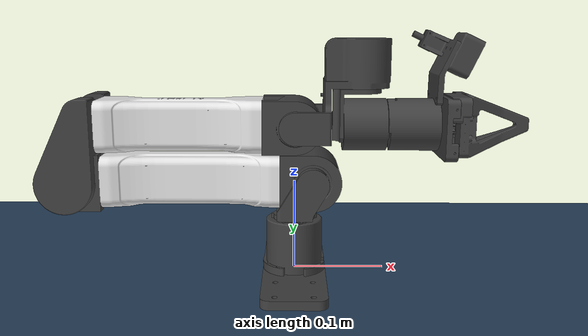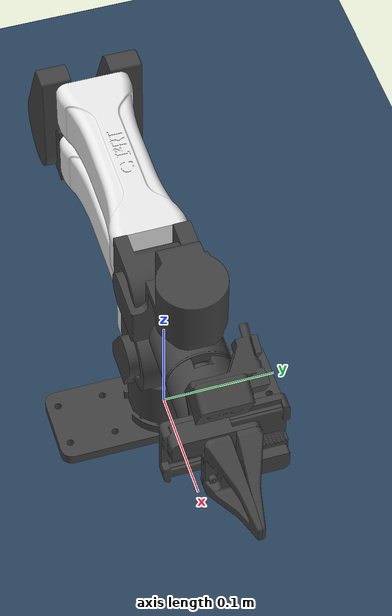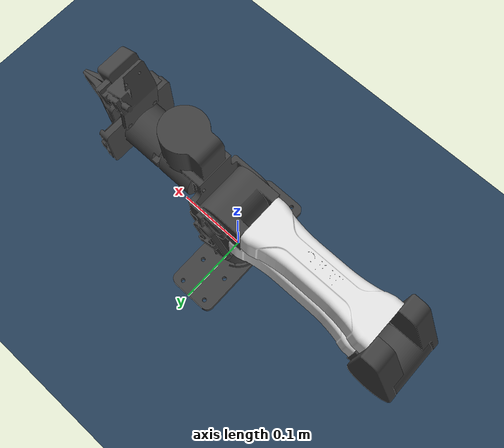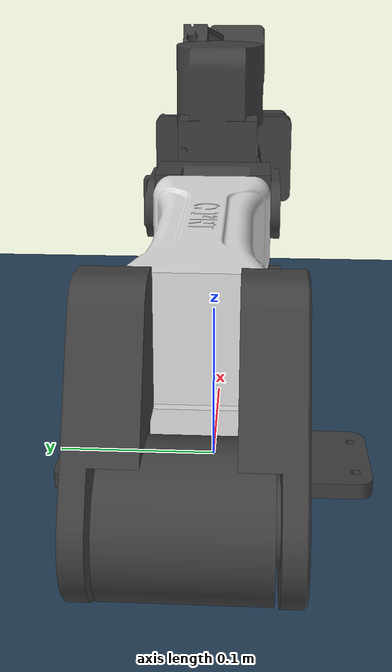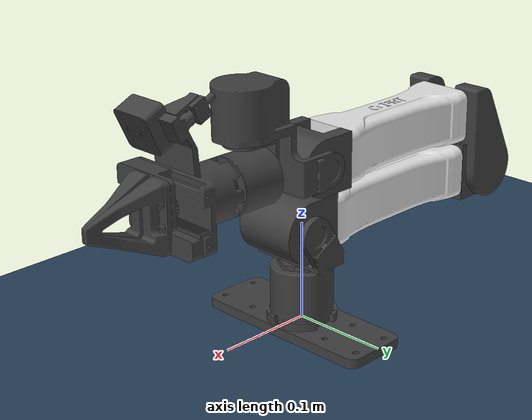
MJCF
<mujoco model="yam_linear_4310 scene">
  <include file="yam_linear_4310.xml"/>

  <visual>
    <headlight diffuse="0.6 0.6 0.6" ambient="0.3 0.3 0.3" specular="0 0 0"/>
    <rgba haze="0.15 0.25 0.35 1"/>
    <global azimuth="120" elevation="-20"/>
    <scale contactwidth="0.03" contactheight="0.01" forcewidth="0.01"/>
  </visual>

  <asset>
    <texture type="skybox" builtin="gradient" rgb1="0.3 0.5 0.7" rgb2="0 0 0" width="512" height="3072"/>
    <texture type="2d" name="groundplane" builtin="checker" mark="edge" rgb1="0.2 0.3 0.4" rgb2="0.1 0.2 0.3"
      markrgb="0.8 0.8 0.8" width="300" height="300"/>
    <material name="groundplane" texture="groundplane" texuniform="true" texrepeat="5 5" reflectance="0.2"/>
  </asset>

  <worldbody>
    <light pos="0 0 1.5" dir="0 0 -1" directional="true"/>
    <geom name="floor" pos="0 0 -0.01" size="0 0 0.05" type="plane" material="groundplane" contype="1"/>
  </worldbody>
</mujoco>

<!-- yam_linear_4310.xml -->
<mujoco model="yam_linear_4310">
  <compiler angle="radian" meshdir="assets"/>

  <option integrator="implicitfast"/>

  <visual>
    <scale contactwidth="0.03" contactheight="0.01" forcewidth="0.01"/>
  </visual>

  <default>
    <default class="yam">
      <position inheritrange="1"/>
      <joint frictionloss="0.1" axis="0 0 1"/>
      <default class="dm4340">
        <joint armature="0.032"/>
        <position kp="80" kv="5" forcerange="-28 28"/>
      </default>
      <default class="dm4310">
        <joint armature="0.0018"/>
        <position kp="10" kv="1.5" forcerange="-10 10"/>
      </default>
      <default class="visual">
        <geom type="mesh" contype="0" conaffinity="0" density="0" group="2" material="black"/>
      </default>
      <default class="collision">
        <geom group="3" type="capsule"/>
        <default class="finger_body_collision">
          <geom type="box" rgba="0.381493 0.492734 0.780446 1"/>
        </default>
        <default class="finger_collision">
          <geom type="box" condim="6" friction="1 5e-3 5e-4" solref=".01 1" priority="1"
            rgba="0.381493 0.492734 0.780446 1"/>
        </default>
      </default>
      <default class="finger">
        <!-- Rail travel: 0 is closed, 0.0475 m is open. The range extends 5 mm
          past closed to allow squeezing grasped objects (up to 50 N per pad). -->
        <joint type="slide" axis="0 0 -1" range="-0.005 0.0475" armature="0.1" frictionloss="0.1"/>
        <position ctrlrange="-0.005 0.0475" kp="2000" kv="150" forcerange="-100 100" inheritrange="0"/>
      </default>
    </default>
  </default>

  <asset>
    <material name="black" rgba="0.25 0.25 0.25 1"/>
    <material name="white" rgba="0.9 0.9 0.9 1"/>

    <mesh file="model2.stl"/>
    <mesh file="model2__2.stl"/>
    <mesh file="model2__3.stl"/>
    <mesh file="model2__4.stl"/>
    <mesh file="model2__5.stl"/>
    <mesh file="model2__6.stl"/>
    <mesh file="model2__7.stl"/>
    <mesh file="model2__8.stl"/>
    <mesh file="model2__9.stl"/>
    <mesh file="model2__10.stl"/>
    <mesh file="model2__11.stl"/>
    <mesh file="linear_4310/gripper.stl"/>
    <mesh file="linear_4310/tip_left.stl"/>
    <mesh file="linear_4310/tip_right.stl"/>
    <mesh file="linear_4310/d405_wrist_linear_4310.stl"/>
  </asset>

  <worldbody>
    <light name="spotlight" mode="targetbodycom" target="link_6" pos="0 0 1"/>
    <body name="arm" childclass="yam">
      <geom class="visual" pos="0 0 -0.0006" quat="1 0 0 1" mesh="model2"/>
      <geom class="collision" size="0.033 0.01" pos="0.0 0.0 0.026" quat="1 0 0 0"/>
      <body name="link_1" pos="0 0 0.0631" quat="1 0 0 1">
        <inertial pos="-0.00192861 -0.00795735 0.0208176" quat="0.297851 0.642634 0.360045 0.607185" mass="0.12415"
          diaginertia="0.000180751 0.000145532 5.89179e-05"/>
        <joint name="joint1" range="-2.61799 3.14159" class="dm4340"/>
        <geom class="visual" pos="5.26159e-07 2.34355e-07 -0.0632" quat="1 0 0 0" mesh="model2__2"/>
        <body name="link_2" pos="2.5e-05 -0.02 0.0409" quat="1 1 1 1" gravcomp="1">
          <inertial pos="0.132008 2.10599e-06 0.000293073" quat="1 1 1 1" mass="1.24434"
            diaginertia="0.0121902 0.0121318 0.000683304"/>
          <joint name="joint2" range="0 3.66519" class="dm4340"/>
          <geom class="visual" pos="0.0199992 -0.1041 -2.44738e-05" quat="1 -1 -1 -1" mesh="model2__3"/>
          <geom class="visual" pos="0.0199992 -0.1041 -2.44738e-05" quat="1 -1 -1 -1" mesh="model2__4"/>
          <geom class="visual" pos="0.0199992 -0.1041 -2.44738e-05" quat="1 -1 -1 -1" mesh="model2__5"
            material="white"/>
          <geom class="collision" size="0.032 0.11" pos="0.13 0 0" quat="1 0 1 0"/>
          <geom class="collision" size="0.033 0.02" pos="0 0.0 0" quat="1 0 0 0"/>
          <geom class="collision" size="0.033 0.025" pos="0.265 0 0" quat="1 0 0 0"/>
          <body name="link_3" pos="0.264 0 0" quat="0 1 0 0" gravcomp="1">
            <inertial pos="-0.121816 -0.054846 -0.000111108" quat="1 1 1 1" mass="0.853698"
              diaginertia="0.00699732 0.00696112 0.000788244"/>
            <joint name="joint3" range="0 3.14159" class="dm4340"/>
            <geom class="visual" pos="-0.244001 0.104101 2.44738e-05" quat="1 1 1 -1" mesh="model2__6"/>
            <geom class="visual" pos="-0.244001 0.104101 2.44738e-05" quat="1 1 1 -1" mesh="model2__7"/>
            <geom class="visual" pos="-0.244001 0.104101 2.44738e-05" quat="1 1 1 -1" mesh="model2__8"
              material="white"/>
            <geom class="visual" pos="-0.244001 0.104101 2.44738e-05" quat="1 1 1 -1" mesh="model2__9"/>
            <geom class="collision" size="0.034 0.12" pos="-0.14 -0.06 0.0" quat="1 0 1 0"/>
            <geom class="collision" size="0.034 0.015" pos="-0.24 -0.06 0.0" quat="1 0 0 0"/>
            <body name="link_4" pos="-0.245 -0.06 0" quat="1 0 0 0" gravcomp="1">
              <inertial pos="-0.0769778 -0.0527104 0.000154878" quat="0.667 0.667 -0.236 -0.236" mass="0.463511"
                diaginertia="0.000791532 0.000744733 0.000282116"/>
              <joint name="joint4" range="-1.69297 1.5708" class="dm4310"/>
              <geom class="visual" pos="0.00100023 0.164101 2.44738e-05" quat="1 1 1 -1" mesh="model2__10"/>
              <geom class="collision" size="0.03 0.015" pos="-0.073 -0.06 0.0" quat="1 1 0 0"/>
              <body name="link_5" pos="-0.074 -0.0395 2.5e-05" quat="1 -1 1 1" gravcomp="1">
                <inertial pos="3.64861e-05 0.00025665 0.0353526" quat="1 0 0 0" mass="0.350962"
                  diaginertia="0.000197802 0.0001775 0.000147402"/>
                <joint name="joint5" range="-1.5708 1.5708" class="dm4310"/>
                <geom class="visual" pos="0 -0.0749971 0.203601" quat="1.32679e-06 1 0 0" mesh="model2__11"/>
                <geom class="collision" size="0.030 0.015" pos="0 0.025 0.0395" quat="1 1 0 0"/>
                <body name="link_6" pos="0 0.0353 0.0395" quat="1 -1 0 0" gravcomp="1">
                  <inertial pos="-0.000249374 3.57092e-05 0.0293138" quat="-0.529232 -0.466094 0.478578 0.523107"
                    mass="0.553219" diaginertia="0.000409686 0.000369758 0.000324415"/>
                  <joint name="joint6" range="-2.0944 2.0944" class="dm4310"/>
                  <geom class="collision" size="0.030 0.005" pos="0 0.0 0.03" quat="1 0 0 1"/>
                  <site name="tcp_site" pos="0 0 0" quat="1 0 0 -1" size="0.005" rgba="1 0 0 1" group="4"/>
                  <site name="grasp_site" pos="0 0 0.1347" quat="1 0 0 -1" size="0.005" rgba="0 1 0 1" group="4"/>
                  <!-- The linear_4310 gripper frame: z points back from the
                    fingertips, the fingers slide along y. -->
                  <frame quat="0 1 -1 0">
                    <geom class="visual" pos="-0.014 -0.0463995 0.0731" mesh="gripper"/>
                    <geom name="gripper_housing" class="collision" type="box" pos="0 0 -0.054"
                      size="0.0325 0.051 0.0095"/>
                    <body name="left_finger" pos="-0.0238981 0.0450619 -0.0545599" quat="0.499998 -0.5 -0.5 -0.500002"
                      gravcomp="1">
                      <inertial pos="-0.0224716 0.0143408 -0.0426253" quat="0.498899 0.455348 -0.0576406 0.735143"
                        mass="0.0710042" diaginertia="6.24193e-05 6.01079e-05 2.83591e-05"/>
                      <joint class="finger" name="left_finger"/>
                      <geom class="visual" pos="0.129783 0.00999321 -0.0914614" quat="0.499998 0.5 0.500002 0.5"
                        mesh="tip_left"/>
                      <frame pos="0.0545598 0.0238985 -0.0450618" quat="0.499998 0.5 0.5 0.500002">
                        <geom name="left_rail_base" class="finger_body_collision" pos="-0.0238 0.0235 -0.0612"
                          size="0.01 0.0247 0.0102"/>
                        <geom name="left_rail_lip" class="finger_body_collision" pos="-0.011 0.0235 -0.0568"
                          size="0.0028 0.0247 0.0058"/>
                        <geom name="left_carriage" class="finger_body_collision" pos="-0.0106 -0.0126 -0.0686"
                          size="0.0232 0.0104 0.0032"/>
                        <geom name="left_base_plate" class="finger_body_collision" pos="0 -0.0127 -0.0744"
                          size="0.0335 0.0101 0.0032"/>
                        <geom name="left_base_web" class="finger_body_collision" pos="0 -0.0077 -0.0812"
                          size="0.0215 0.0053 0.0038"/>
                        <geom name="left_strut_top" class="finger_body_collision" pos="0.0183 -0.0044 -0.1027"
                          quat="0.98186 0.02943 0.1872 0.00561" size="0.0052 0.0026 0.0295"/>
                        <geom name="left_tip_bevel_top" class="finger_body_collision" pos="0.0097 -0.0055 -0.124"
                          quat="-0.01978 0.18198 -0.10624 0.97735" size="0.0052 0.0012 0.0189"/>
                        <geom name="left_strut_top_back" class="finger_body_collision" pos="0.021 -0.0124 -0.0944"
                          quat="-0.03203 0.17278 -0.17946 0.96794" size="0.0052 0.0035 0.0227"/>
                        <geom name="left_strut_bot" class="finger_body_collision" pos="-0.0183 -0.0044 -0.1027"
                          quat="0.98186 0.02943 -0.1872 -0.00561" size="0.0052 0.0026 0.0295"/>
                        <geom name="left_tip_bevel_bot" class="finger_body_collision" pos="-0.0097 -0.0055 -0.124"
                          quat="0.01978 -0.18198 -0.10624 0.97735" size="0.0052 0.0012 0.0189"/>
                        <geom name="left_strut_bot_back" class="finger_body_collision" pos="-0.021 -0.0124 -0.0944"
                          quat="0.03203 -0.17278 -0.17946 0.96794" size="0.0052 0.0035 0.0227"/>
                        <body name="left_pad" gravcomp="1">
                          <geom name="left_pad" class="finger_collision" pos="0 -0.0017 -0.1362"
                            size="0.0072 0.0017 0.0082"/>
                        </body>
                        <geom name="left_pad_edge_a" class="finger_body_collision" pos="0.0078 -0.0017 -0.134"
                          quat="0.98236 0 0.18699 0" size="0.003 0.0017 0.0088"/>
                        <geom name="left_pad_edge_b" class="finger_body_collision" pos="-0.0078 -0.0017 -0.134"
                          quat="0.98236 0 -0.18699 0" size="0.003 0.0017 0.0088"/>
                      </frame>
                    </body>
                    <body name="right_finger" pos="0.0238981 -0.0450619 -0.0545599" quat="0.707105 0.707108 0 0"
                      gravcomp="1">
                      <inertial pos="-0.0143408 -0.0224716 -0.0426253" quat="0.281222 0.8726 0.16705 -0.362738"
                        mass="0.0710042" diaginertia="6.24193e-05 6.01079e-05 2.83591e-05"/>
                      <joint class="finger" name="right_finger"/>
                      <geom class="visual" pos="-0.0379932 0.129783 0.00133753" quat="0.707105 -0.707108 0 0"
                        mesh="tip_right"/>
                      <frame pos="-0.0238981 0.0545597 -0.0450621" quat="0.707105 -0.707108 0 0">
                        <frame quat="0 0 0 1">
                          <geom name="right_rail_base" class="finger_body_collision" pos="-0.0238 0.0235 -0.0612"
                            size="0.01 0.0247 0.0102"/>
                          <geom name="right_rail_lip" class="finger_body_collision" pos="-0.011 0.0235 -0.0568"
                            size="0.0028 0.0247 0.0058"/>
                          <geom name="right_carriage" class="finger_body_collision" pos="-0.0106 -0.0126 -0.0686"
                            size="0.0232 0.0104 0.0032"/>
                          <geom name="right_base_plate" class="finger_body_collision" pos="0 -0.0127 -0.0744"
                            size="0.0335 0.0101 0.0032"/>
                          <geom name="right_base_web" class="finger_body_collision" pos="0 -0.0077 -0.0812"
                            size="0.0215 0.0053 0.0038"/>
                          <geom name="right_strut_top" class="finger_body_collision" pos="0.0183 -0.0044 -0.1027"
                            quat="0.98186 0.02943 0.1872 0.00561" size="0.0052 0.0026 0.0295"/>
                          <geom name="right_tip_bevel_top" class="finger_body_collision" pos="0.0097 -0.0055 -0.124"
                            quat="-0.01978 0.18198 -0.10624 0.97735" size="0.0052 0.0012 0.0189"/>
                          <geom name="right_strut_top_back" class="finger_body_collision" pos="0.021 -0.0124 -0.0944"
                            quat="-0.03203 0.17278 -0.17946 0.96794" size="0.0052 0.0035 0.0227"/>
                          <geom name="right_strut_bot" class="finger_body_collision" pos="-0.0183 -0.0044 -0.1027"
                            quat="0.98186 0.02943 -0.1872 -0.00561" size="0.0052 0.0026 0.0295"/>
                          <geom name="right_tip_bevel_bot" class="finger_body_collision" pos="-0.0097 -0.0055 -0.124"
                            quat="0.01978 -0.18198 -0.10624 0.97735" size="0.0052 0.0012 0.0189"/>
                          <geom name="right_strut_bot_back" class="finger_body_collision" pos="-0.021 -0.0124 -0.0944"
                            quat="0.03203 -0.17278 -0.17946 0.96794" size="0.0052 0.0035 0.0227"/>
                          <body name="right_pad" gravcomp="1">
                            <geom name="right_pad" class="finger_collision" pos="0 -0.0017 -0.1362"
                              size="0.0072 0.0017 0.0082"/>
                          </body>
                          <geom name="right_pad_edge_a" class="finger_body_collision" pos="0.0078 -0.0017 -0.134"
                            quat="0.98236 0 0.18699 0" size="0.003 0.0017 0.0088"/>
                          <geom name="right_pad_edge_b" class="finger_body_collision" pos="-0.0078 -0.0017 -0.134"
                            quat="0.98236 0 -0.18699 0" size="0.003 0.0017 0.0088"/>
                        </frame>
                      </frame>
                    </body>
                  </frame>
                  <body name="wrist_camera" pos="0 0.070435 0.077006" quat="0 0 0.216440 -0.976296">
                    <inertial pos="0.0015 0.0067 -0.0195" quat="0.104 0.4652 -0.2063 0.8546" mass="0.1087"
                      diaginertia="6.605e-05 4.486e-05 3.812e-05"/>
                    <geom class="visual" mesh="d405_wrist_linear_4310"/>
                    <geom name="d405" class="collision" type="box" pos="0.009 0 -0.0115" size="0.021 0.021 0.0115"/>
                    <geom name="bracket_base" class="collision" type="box" pos="-0.0003 0.0417 -0.0191"
                      quat="0.3799 0.5964 0.5964 -0.3799" size="0.003 0.027 0.017"/>
                    <geom name="bracket_arm" class="collision" type="box" pos="0.0017 0.0078 -0.0254"
                      quat="0.5 0.5 0.5 -0.5" size="0.0025 0.0265 0.018"/>
                    <geom name="bracket_clamp" class="collision" type="box" pos="0.001 -0.0002 -0.029"
                      quat="0.5 0.5 0.5 -0.5" size="0.006 0.0281 0.0099"/>
                    <camera name="wrist_cam" quat="0 1 0 0" focal="1.93e-3 1.93e-3" resolution="1280 720"
                      sensorsize="3896e-6 2140e-6"/>
                  </body>
                </body>
              </body>
            </body>
          </body>
        </body>
      </body>
    </body>
  </worldbody>

  <contact>
    <exclude body1="arm" body2="link_1"/>
    <exclude body1="link_6" body2="left_finger"/>
    <exclude body1="link_6" body2="right_finger"/>
    <exclude body1="link_6" body2="wrist_camera"/>
    <exclude body1="left_finger" body2="right_finger"/>
    <exclude body1="left_finger" body2="right_pad"/>
    <exclude body1="right_finger" body2="left_pad"/>
  </contact>

  <equality>
    <joint joint1="left_finger" joint2="right_finger" polycoef="0 1 0 0 0"/>
  </equality>

  <actuator>
    <position name="joint1" joint="joint1" class="dm4340"/>
    <position name="joint2" joint="joint2" class="dm4340"/>
    <position name="joint3" joint="joint3" class="dm4340"/>
    <position name="joint4" joint="joint4" class="dm4310" kp="40" kv="1.5"/>
    <position name="joint5" joint="joint5" class="dm4310"/>
    <position name="joint6" joint="joint6" class="dm4310"/>
    <position class="finger" name="gripper" joint="left_finger"/>
  </actuator>

  <keyframe>
    <key name="home" qpos="0 1.047 1.047 0 0 0 0 0" ctrl="0 1.047 1.047 0 0 0 -0.005"/>
  </keyframe>
</mujoco>
